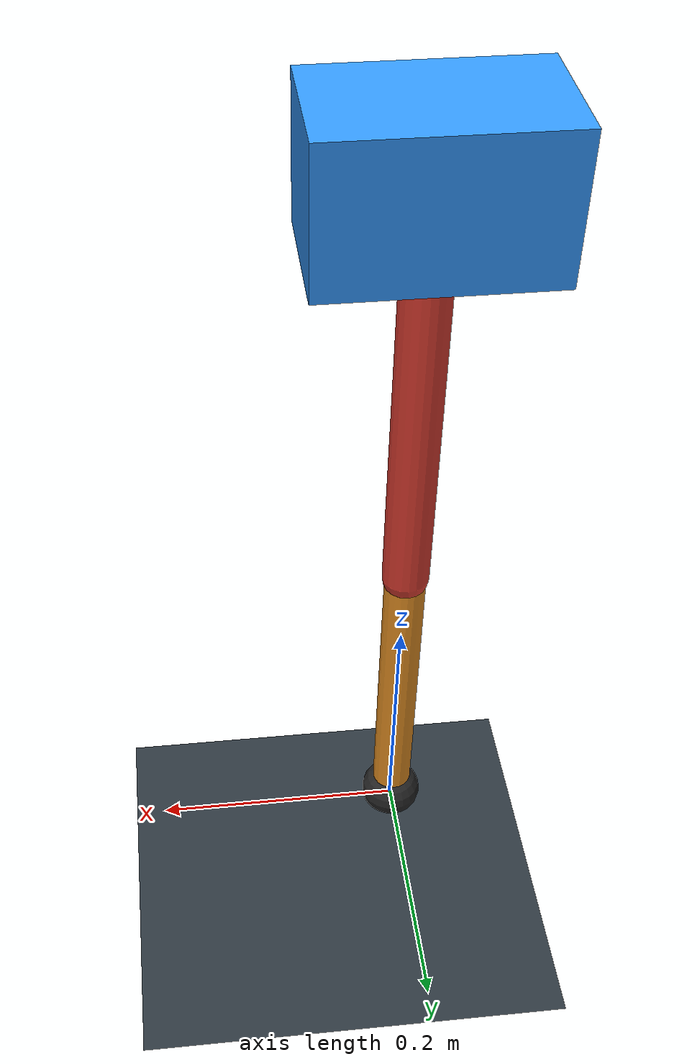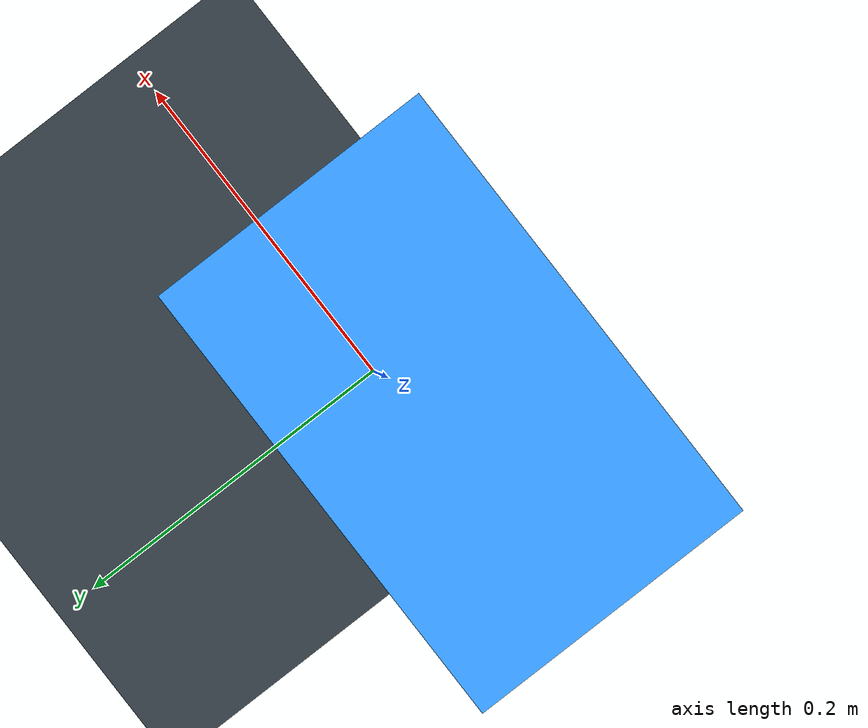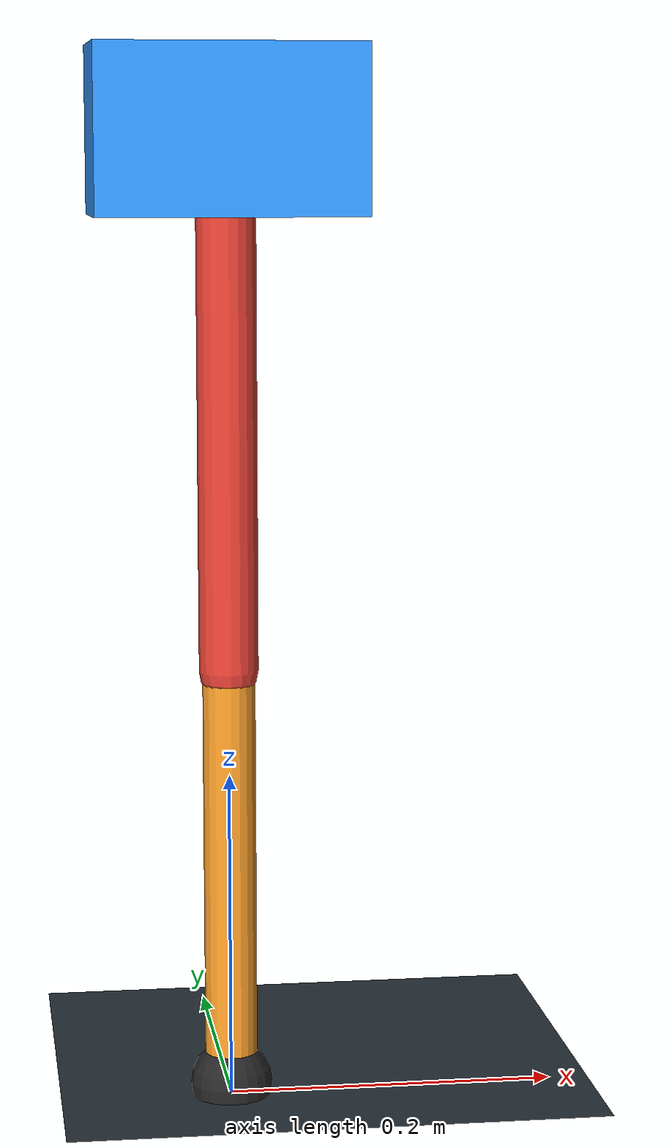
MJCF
<mujoco model="single_axis_two_bar">
  <compiler angle="radian" inertiafromgeom="true"/>
  <option timestep="0.001" integrator="implicitfast" gravity="0 0 -9.81"/>
  <default>
    <joint damping="0.08"/>
    <geom friction="1.2 0.01 0.0001" condim="3"/>
  </default>
  <worldbody>
    <geom name="floor" type="plane" size="5 5 0.1" rgba="0.18 0.22 0.25 1"/>
    <body name="carriage" pos="0 0 0.5887278243079609">
      <joint name="pole_slide" type="slide" axis="0 0 1"/>
      <geom name="payload" type="box" size="0.08 0.05 0.05" mass="2.1580450160592624" rgba="0.2 0.6 1 1"/>
      <body name="thigh" pos="0 0 0">
        <joint name="hip" type="hinge" axis="0 1 0"/>
        <geom name="thigh_link" type="capsule" fromto="0 0 0 0 0 -0.32362331146949963" size="0.018" mass="0.23058588572678815" rgba="0.9 0.25 0.2 1"/>
        <body name="shank" pos="0 0 -0.32362331146949963">
          <joint name="knee" type="hinge" axis="0 1 0"/>
          <geom name="shank_link" type="capsule" fromto="0 0 0 0 0 -0.257539394002625" size="0.016" mass="0.1835002213097136" rgba="0.95 0.6 0.15 1"/>
          <geom name="foot" type="sphere" pos="0 0 -0.257539394002625" size="0.025" mass="0.03" rgba="0.15 0.15 0.15 1"/>
          <site name="toe" pos="0 0 -0.257539394002625" size="0.008"/>
        </body>
      </body>
    </body>
  </worldbody>
  <actuator>
    <motor name="hip_motor" joint="hip" ctrlrange="-13.484841247133021 13.484841247133021"/>
    <motor name="knee_motor" joint="knee" ctrlrange="-46.29318590952143 46.29318590952143"/>
  </actuator>
</mujoco>
